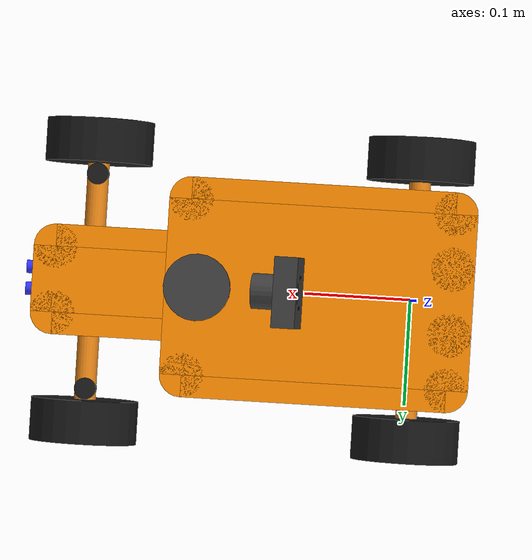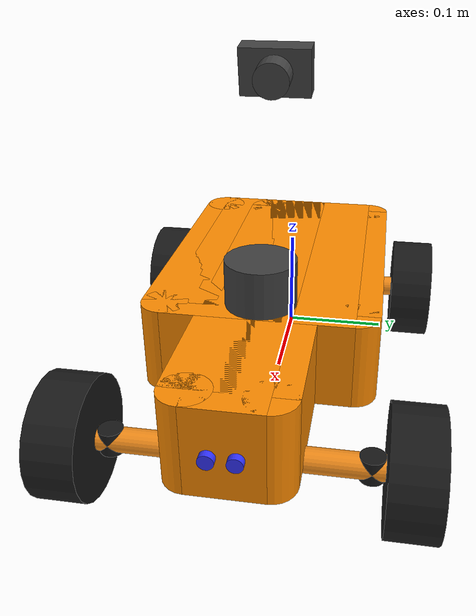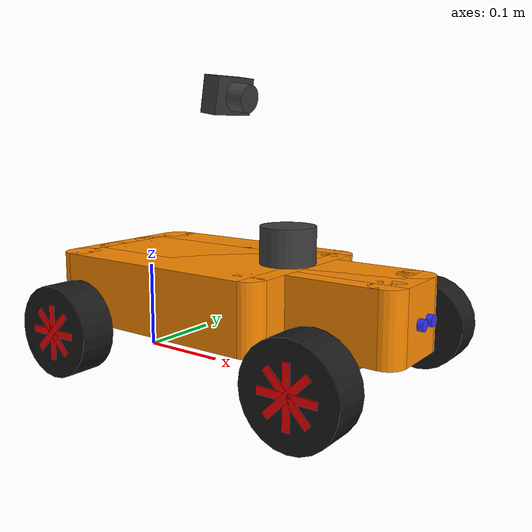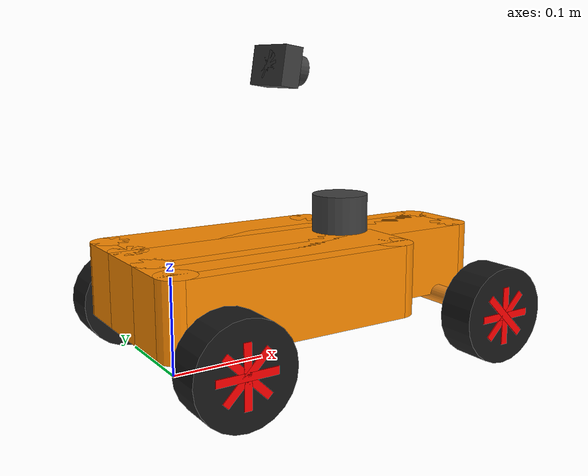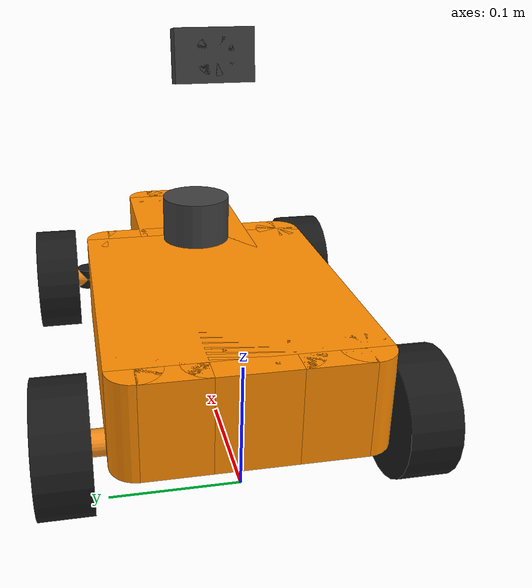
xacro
<?xml version="1.0"?>
<robot name="robo_car" xmlns:xacro="http://www.ros.org/wiki/xacro">

    <xacro:include filename="color_macros.xacro" />

    <xacro:include filename="inertia_macros.xacro" />

    <xacro:include filename="robot_core.xacro" />

    <xacro:include filename="controllers/gazebo_hw_ros2_control.xacro" />

</robot>

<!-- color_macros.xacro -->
<robot xmlns:xacro="http://www.ros.org/wiki/xacro" >

    <material name="white">
        <color rgba="1 1 1 1" />
    </material>

    <material name="grey">
        <color rgba="0.25 0.25 0.25 1"/>
    </material>

    <material name="orange">
        <color rgba="1 0.55 0 1"/>
    </material>

    <material name="blue">
        <color rgba="0.2 0.2 1 1"/>
    </material>

    <material name="red">
        <color rgba="1 0 0 1"/>
    </material>

    <material name="black">
        <color rgba="0.1 0.1 0.1 1"/>
    </material>

    <material name="silver">
        <color rgba="0.6 0.6 0.6 1"/>
    </material>

</robot>

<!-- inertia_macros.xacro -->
<robot name="robo_car" xmlns:xacro="http://www.ros.org/wiki/xacro" >

    <!-- Specify some standard inertial calculations https://en.wikipedia.org/wiki/List_of_moments_of_inertia -->
    <!-- These make use of xacro's mathematical functionality -->

    <!-- ################### inertia macros  ############################-->

    <xacro:macro name="inertial_sphere" params="mass radius *origin">
        <inertial>
            <xacro:insert_block name="origin"/>
            <mass value="${mass}" />
            <inertia ixx="${(2/5) * mass * (radius*radius)}" ixy="0.0" ixz="0.0"
                    iyy="${(2/5) * mass * (radius*radius)}" iyz="0.0"
                    izz="${(2/5) * mass * (radius*radius)}" />
        </inertial>
    </xacro:macro>

    <xacro:macro name="inertial_box" params="mass x y z *origin">
        <inertial>
            <xacro:insert_block name="origin"/>
            <mass value="${mass}" />
            <inertia ixx="${(1/12) * mass * (y*y+z*z)}" ixy="0.0" ixz="0.0"
                    iyy="${(1/12) * mass * (x*x+z*z)}" iyz="0.0"
                    izz="${(1/12) * mass * (x*x+y*y)}" />
        </inertial>
    </xacro:macro>

    <xacro:macro name="inertial_cylinder" params="mass length radius *origin">
        <inertial>
            <xacro:insert_block name="origin"/>
            <mass value="${mass}" />
            <inertia ixx="${(1/12) * mass * (3*radius*radius + length*length)}" ixy="0.0" ixz="0.0"
                    iyy="${(1/12) * mass * (3*radius*radius + length*length)}" iyz="0.0"
                    izz="${(1/2) * mass * (radius*radius)}" />
        </inertial>
    </xacro:macro>

</robot>

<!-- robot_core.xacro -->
<robot xmlns:xacro="http://www.ros.org/wiki/xacro">

    <xacro:include filename="other_parts/box_with_fillet_macro.xacro"/>
    <xacro:include filename="other_parts/drive_wheel_macro.xacro"/>
    <xacro:include filename="other_parts/drive_wheel_rim_macro.xacro"/>

    <xacro:include filename="sensors/sonar.xacro"/>
    <xacro:include filename="sensors/lidar.xacro"/>
    <xacro:include filename="sensors/cam.xacro"/>

    <xacro:property name="wheel_radius" value="0.05"/>
    <xacro:property name="wheel_width" value="0.04"/>
    <xacro:property name="wheel_mass" value="0.04"/>
    <xacro:property name="spoke_width" value="0.0075"/>

    <xacro:property name="chassis_height" value="0.075"/>
    <xacro:property name="wheel_seperation" value="0.26"/>
    <xacro:property name="dist_btw_front_rear" value="0.3"/>

    <!-- BASE LINK -->

    <link name="base_link">
    </link>

    <!-- CHASSIS LINK -->

    <joint name="chassis_joint" type="fixed">
        <parent link="base_link"/>
        <child link="chassis"/>
        <origin xyz="0 0 0.05"/>
    </joint>

    <link name="chassis">
        <xacro:insert_box_with_fillet size_x="0.28" size_y="0.2" size_z="${chassis_height}"
        fillet_radius="0.02" material="orange" x="0.09" y="0" z="${chassis_height/2}"/>
        <collision>
           <origin xyz="0.09 0 ${chassis_height/2}" rpy="0 0 0"/>
            <geometry>
                <box size="0.28 0.2 ${chassis_height}"/>
            </geometry>
        </collision>

        <xacro:insert_box_with_fillet size_x="0.4" size_y="0.1" size_z="${chassis_height}"
        fillet_radius="0.02" material="orange" x="0.15" y="0" z="${chassis_height/2}"/>
        <collision>
           <origin xyz="0.15 0 ${chassis_height/2}" rpy="0 0 0"/>
            <geometry>
                <box size="0.4 0.1 ${chassis_height}"/>
            </geometry>
        </collision>

        <visual>
            <origin xyz="0 0 0" rpy="${-pi/2} 0 0"/>
            <geometry>
                <cylinder length="${wheel_seperation-0.04}" radius="0.01"/>
            </geometry>
        </visual>
        <collision>
           <origin xyz="0 0 0" rpy="${-pi/2} 0 0"/>
            <geometry>
                <cylinder length="${wheel_seperation-0.04}" radius="0.01"/>
            </geometry>
        </collision>

        <visual>
            <origin xyz="${dist_btw_front_rear} 0 0" rpy="${-pi/2} 0 0"/>
            <geometry>
                <cylinder length="${wheel_seperation-0.04}" radius="0.01"/>
            </geometry>
        </visual>
        <collision>
           <origin xyz="${dist_btw_front_rear} 0 0" rpy="${-pi/2} 0 0"/>
            <geometry>
                <cylinder length="${wheel_seperation-0.04}" radius="0.01"/>
            </geometry>
        </collision>

        <xacro:inertial_box mass="4.0" x="0.4" y="0.2" z="${chassis_height}">
            <origin xyz="0.15 0 ${chassis_height/2}" rpy="0 0 0"/>
        </xacro:inertial_box>
    </link>
    <gazebo reference="chassis">
        <material>Gazebo/Orange</material>
    </gazebo>

    <!--  FRONT LEFT SERVO STEER LINK -->

    <joint name="front_left_servo_joint" type="revolute">
        <parent link="chassis"/>
        <child link="front_left_servo"/>
        <origin xyz="${dist_btw_front_rear} 0.1 0"/>
        <axis xyz="0 0 1"/>
        <limit effort="1000.0" lower="${-pi/2}" upper="${pi/2}" velocity="0.5"/>
    </joint>

    <link name="front_left_servo">
        <visual>
            <origin xyz="0 0 0" rpy="0 0 0"/>
            <geometry>
                <cylinder radius="0.01" length="0.02"/>
            </geometry>
            <material name="black"/>
        </visual>
        <collision>
           <origin xyz="0 0 0" rpy="0 0 0"/>
            <geometry>
                <cylinder radius="0.01" length="0.02"/>
            </geometry>
        </collision>
        <xacro:inertial_cylinder mass="0.005" length="0.02" radius="0.01">
            <origin xyz="0 0 0" rpy="0 0 0"/>
        </xacro:inertial_cylinder>
    </link>
    <gazebo reference="front_left_servo">
        <material>Gazebo/DarkGrey</material>
    </gazebo>

    <!-- FRONT LEFT DRIVE WHEEL -->

    <xacro:insert_drive_wheel
        base_name="front_left_wheel"
        parent_name="front_left_servo"
        x="0" y="0.03" z="0"
        mass="${wheel_mass}"
        radius="${wheel_radius}"
        thickness="${wheel_width}"/>

    <xacro:insert_drive_wheel_rim
        base_name="front_left_rim"
        parent_name="front_left_wheel"
        x="0" y="0" z="0.001"
        radius="${wheel_radius}"
        thickness="${wheel_width}"
        spoke_width="${spoke_width}"/>

    <!--  FRONT RIGHT SERVO STEER LINK -->

    <joint name="front_right_servo_joint" type="revolute">
        <parent link="chassis"/>
        <child link="front_right_servo"/>
        <origin xyz="${dist_btw_front_rear} -0.1 0"/>
        <axis xyz="0 0 1"/>
        <limit effort="1000.0" lower="${-pi/2}" upper="${pi/2}" velocity="0.5"/>
    </joint>

    <link name="front_right_servo">
        <visual>
            <origin xyz="0 0 0" rpy="0 0 0"/>
            <geometry>
                <cylinder radius="0.01" length="0.02"/>
            </geometry>
            <material name="black"/>
        </visual>
        <collision>
           <origin xyz="0 0 0" rpy="0 0 0"/>
            <geometry>
                <cylinder radius="0.01" length="0.02"/>
            </geometry>
        </collision>
        <xacro:inertial_cylinder mass="0.005" length="0.02" radius="0.01">
            <origin xyz="0 0 0" rpy="0 0 0"/>
        </xacro:inertial_cylinder>
    </link>
    <gazebo reference="front_right_servo">
        <material>Gazebo/DarkGrey</material>
    </gazebo>

    <!-- FRONT RIGHT DRIVE WHEEL -->

    <xacro:insert_drive_wheel
        base_name="front_right_wheel"
        parent_name="front_right_servo"
        x="0" y="-0.03" z="0"
        mass="${wheel_mass}"
        radius="${wheel_radius}"
        thickness="${wheel_width}"/>

    <xacro:insert_drive_wheel_rim
        base_name="front_right_rim"
        parent_name="front_right_wheel"
        x="0" y="0" z="-0.001"
        radius="${wheel_radius}"
        thickness="${wheel_width}"
        spoke_width="${spoke_width}"/>

    <!-- REAR LEFT DRIVE WHEEL -->

    <xacro:insert_drive_wheel
        base_name="rear_left_wheel"
        parent_name="chassis"
        x="0" y="${wheel_seperation/2}" z="0"
        mass="${wheel_mass}"
        radius="${wheel_radius}"
        thickness="${wheel_width}"/>

    <xacro:insert_drive_wheel_rim
        base_name="rear_left_rim"
        parent_name="rear_left_wheel"
        x="0" y="0" z="0.001"
        radius="${wheel_radius}"
        thickness="${wheel_width}"
        spoke_width="${spoke_width}"/>

    <!-- REAR RIGHT DRIVE WHEEL -->

    <xacro:insert_drive_wheel
        base_name="rear_right_wheel"
        parent_name="chassis"
        x="0" y="${-wheel_seperation/2}" z="0"
        mass="${wheel_mass}"
        radius="${wheel_radius}"
        thickness="${wheel_width}"/>

    <xacro:insert_drive_wheel_rim
        base_name="rear_right_rim"
        parent_name="rear_right_wheel"
        x="0" y="0" z="-0.001"
        radius="${wheel_radius}"
        thickness="${wheel_width}"
        spoke_width="${spoke_width}"/>

    <!--  sonar -->
    <xacro:insert_sonar
        base_name="sonar"
        parent_name="chassis"
        x="${0.15+0.2+0.005}" y="0" z="${(chassis_height/2)}"
        mass="0.005"
        min_range="0.02" max_range="3.0"
        resolution="0.01" visualize="false"/>

     <!--  lidar -->
    <xacro:property name="lidar_z_offset" value="0.04"/>
    <xacro:insert_lidar
        base_name="lidar"
        parent_name="chassis"
        x="0.2" y="0" z="${chassis_height+lidar_z_offset}"
        mass="0.1" samples="360"
        min_angle="${-pi*2}" max_angle="${pi*2}"
        min_range="0.1" max_range="10"
        visualize="false"/>

    <!--  imu -->

    <!--  normal camera style -->
    <xacro:property name="cam_x_offset" value="0.04"/>
    <xacro:property name="cam_z_offset" value="0.02"/>
    <xacro:insert_camera
        base_name="cam"
        parent_name="chassis"
        x="0.15" y="0" z="${chassis_height+cam_z_offset+0.15}"
        mass="0.005"
        width="640" height="480"
        min_range="0.02" max_range="5.0"
        tilt_angle="${pi/20}"
        visualize="true"/>

</robot>

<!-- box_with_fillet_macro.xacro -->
<robot xmlns:xacro="http://www.ros.org/wiki/xacro" >

    <xacro:macro name="insert_box_with_fillet" params="x y z size_x size_y size_z fillet_radius material">
            <!-- logitudinal box -->
            <visual>
                <origin xyz="${x} ${y} ${z}" rpy="0 0 0"/>
                <geometry>
                    <box size="${size_x} ${size_y-(2*fillet_radius)} ${size_z}"/>
                </geometry>
                <material name="${material}"/>
            </visual>
            <!-- lateral box -->
            <visual>
                <origin xyz="${x} ${y} ${z}" rpy="0 0 0"/>
                <geometry>
                    <box size="${size_x-(2*fillet_radius)} ${size_y} ${size_z}"/>
                </geometry>
                <material name="${material}"/>
            </visual>
            <!-- cylinder1 -->
            <visual>
                <origin xyz="${x+((size_x/2)-fillet_radius)} ${y+((size_y/2)-fillet_radius)} ${z}" rpy="0 0 0"/>
                <geometry>
                    <cylinder length="${size_z}" radius="${fillet_radius}"/>
                </geometry>
                <material name="${material}"/>
            </visual>
            <!-- cylinder2 -->
            <visual>
                <origin xyz="${x+((size_x/2)-fillet_radius)} ${y-((size_y/2)-fillet_radius)} ${z}" rpy="0 0 0"/>
                <geometry>
                    <cylinder length="${size_z}" radius="${fillet_radius}"/>
                </geometry>
                <material name="${material}"/>
            </visual>
            <!-- cylinder3 -->
            <visual>
                <origin xyz="${x-((size_x/2)-fillet_radius)} ${y+((size_y/2)-fillet_radius)} ${z}" rpy="0 0 0"/>
                <geometry>
                    <cylinder length="${size_z}" radius="${fillet_radius}"/>
                </geometry>
                <material name="${material}"/>
            </visual>
            <!-- cylinder4 -->
            <visual>
                <origin xyz="${x-((size_x/2)-fillet_radius)} ${y-((size_y/2)-fillet_radius)} ${z}" rpy="0 0 0"/>
                <geometry>
                    <cylinder length="${size_z}" radius="${fillet_radius}"/>
                </geometry>
                <material name="${material}"/>
            </visual>
    </xacro:macro>

</robot>

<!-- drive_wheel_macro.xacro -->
<robot xmlns:xacro="http://www.ros.org/wiki/xacro" >

    <xacro:macro name="material_black">
        <material name="black">
            <color rgba="0.1 0.1 0.1 1"/>
        </material>
    </xacro:macro>

    <xacro:macro name="inertial_cylinder" params="mass length radius *origin">
        <inertial>
            <xacro:insert_block name="origin"/>
            <mass value="${mass}" />
            <inertia ixx="${(1/12) * mass * (3*radius*radius + length*length)}" ixy="0.0" ixz="0.0"
                    iyy="${(1/12) * mass * (3*radius*radius + length*length)}" iyz="0.0"
                    izz="${(1/2) * mass * (radius*radius)}" />
        </inertial>
    </xacro:macro>

     <!-- GAZEBO WHEEL PARAMETERS -->
    <xacro:macro name="gazebo_wheel_settings" params="name">
        <gazebo reference="${name}">
            <mu1>1.0</mu1>
            <mu2>1.0</mu2>
            <kp>1000000</kp>
            <kd>0.01</kd>
            <minDepth>0.001</minDepth>
            <material>Gazebo/FlatBlack</material>
        </gazebo>
    </xacro:macro>

    <xacro:macro name="insert_drive_wheel" params="base_name parent_name x y z mass radius thickness">
        <joint name="${base_name}_joint" type="continuous">
            <parent link="${parent_name}"/>
            <child link="${base_name}"/>
            <origin xyz="${x} ${y} ${z}" rpy="${-pi/2} 0 0"/>
            <axis xyz="0 0 1"/>
        </joint>

        <link name="${base_name}">
            <visual>
                <origin xyz="0 0 0" rpy="0 0 0"/>
                <geometry>
                    <cylinder radius="${radius}" length="${thickness}"/>
                </geometry>
                <xacro:material_black/>
            </visual>
            <collision>
            <origin xyz="0 0 0" rpy="0 0 0"/>
                <geometry>
                    <cylinder radius="${radius}" length="${thickness}"/>
                </geometry>
            </collision>
            <xacro:inertial_cylinder mass="${mass}" length="${thickness}" radius="${radius}">
                <origin xyz="0 0 0" rpy="0 0 0"/>
            </xacro:inertial_cylinder>
        </link>

        <xacro:gazebo_wheel_settings name="${base_name}"/>

    </xacro:macro>

</robot>

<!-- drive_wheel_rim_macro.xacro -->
<robot xmlns:xacro="http://www.ros.org/wiki/xacro" >

    <xacro:macro name="material_red">
        <material name="red">
            <color rgba="1 0 0 1"/>
        </material>
    </xacro:macro>

    <xacro:macro name="insert_drive_wheel_rim" params="base_name parent_name x y z radius thickness spoke_width">

        <joint name="${base_name}_joint" type="fixed">
            <parent link="${parent_name}"/>
            <child link="${base_name}"/>
            <origin xyz="${x} ${y} ${z}" rpy="0 0 0"/>
        </joint>

        <link name="${base_name}">
            <visual>
                <origin xyz="0 0 0" rpy="0 0 0"/>
                <geometry>
                    <box size="${spoke_width} ${radius*1.2} ${thickness}"/>
                </geometry>
                <xacro:material_red/>
            </visual>
            <visual>
                <origin xyz="0 0 0" rpy="0 0 ${pi/2}"/>
                <geometry>
                    <box size="${spoke_width} ${radius*1.2} ${thickness}"/>
                </geometry>
                <xacro:material_red/>
            </visual>
            <visual>
                <origin xyz="0 0 0" rpy="0 0 ${-pi/4}"/>
                <geometry>
                    <box size="${spoke_width} ${radius*1.2} ${thickness}"/>
                </geometry>
                <xacro:material_red/>
            </visual>
            <visual>
                <origin xyz="0 0 0" rpy="0 0 ${pi/4}"/>
                <geometry>
                    <box size="${spoke_width} ${radius*1.2} ${thickness}"/>
                </geometry>
                <xacro:material_red/>
            </visual>

        </link>

        <gazebo reference="${base_name}">
            <material>Gazebo/Red</material>
        </gazebo>

    </xacro:macro>

</robot>

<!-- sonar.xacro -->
<robot xmlns:xacro="http://www.ros.org/wiki/xacro">

    <xacro:macro name="insert_sonar" params="base_name parent_name x y z mass min_range max_range resolution visualize">

        <joint name="${base_name}_joint" type="fixed">
            <parent link="${parent_name}"/>
            <child link="${base_name}"/>
            <origin xyz="${x} ${y} ${z}" rpy="0 0 0"/>
        </joint>

        <link name="${base_name}">
            <visual>
                <origin xyz="0 0.01 0" rpy="0 ${pi/2} 0"/>
                <geometry>
                    <cylinder radius="0.006" length="0.006"/>
                </geometry>
                <material name="blue"/>
            </visual>
            <collision>
                <origin xyz="0 0.01 0" rpy="0 ${pi/2} 0"/>
                <geometry>
                    <cylinder radius="0.006" length="0.006"/>
                </geometry>
            </collision>

            <visual>
                <origin xyz="0 -0.01 0" rpy="0 ${pi/2} 0"/>
                <geometry>
                    <cylinder radius="0.006" length="0.006"/>
                </geometry>
                <material name="blue"/>
            </visual>
            <collision>
                <origin xyz="0 -0.01 0" rpy="0 ${pi/2} 0"/>
                <geometry>
                    <cylinder radius="0.006" length="0.006"/>
                </geometry>
            </collision>

            <xacro:inertial_cylinder mass="${mass}" length="0.006" radius="0.006">
                <origin xyz="0 0.01 0" rpy="0 ${pi/2} 0"/>
            </xacro:inertial_cylinder>
        </link>

        <gazebo reference="${base_name}">
            <material>Gazebo/Blue</material>

            <sensor name="${base_name}" type="ray">
                <always_on>true</always_on>
                <visualize>${visualize}</visualize>
                <pose>0.0 0 0.0 0 0 0</pose>
                <update_rate>5</update_rate>
                <ray>
                    <scan>
                        <horizontal>
                            <samples>20</samples>
                            <resolution>1</resolution>
                            <min_angle>${-pi/90}</min_angle>
                            <max_angle>${pi/90}</max_angle>
                        </horizontal>
                        <vertical>
                            <samples>20</samples>
                            <resolution>1</resolution>
                            <min_angle>${-pi/150}</min_angle>
                            <max_angle>${pi/150}</max_angle>
                        </vertical>
                    </scan>
                    <range>
                        <min>${min_range}</min>
                        <max>${max_range}</max>
                        <resolution>${resolution}</resolution>
                    </range>
                </ray>

                <plugin name="${base_name}_plugin" filename="libgazebo_ros_ray_sensor.so">
                    <ros>
                        <namespace>${base_name}</namespace>
                        <remapping>~/out:=range</remapping>
                    </ros>
                    <output_type>sensor_msgs/Range</output_type>
                    <radiation_type>ultrasound</radiation_type>
                    <frame_name>${base_name}</frame_name>
                </plugin>
            </sensor>
        </gazebo>
    </xacro:macro>

</robot>

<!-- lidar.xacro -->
<robot xmlns:xacro="http://www.ros.org/wiki/xacro" >

    <xacro:macro name="insert_lidar" params="base_name parent_name x y z mass samples min_angle max_angle min_range max_range visualize">
        <joint name="${base_name}_joint" type="fixed">
            <parent link="${parent_name}"/>
            <child link="${base_name}"/>
            <origin xyz="${x} ${y} ${z}" rpy="0 0 0"/>
        </joint>

        <link name="${base_name}">
            <visual>
                <origin xyz="0 0 -0.02"/>
                <geometry>
                    <cylinder radius="0.03" length="0.04"/>
                </geometry>
                <material name="grey"/>
            </visual>
            <collision>
                <origin xyz="0 0 -0.02"/>
                <geometry>
                    <cylinder radius="0.03" length="0.04"/>
                </geometry>
            </collision>
            <xacro:inertial_cylinder mass="${mass}" length="0.04" radius="0.03">
                <origin xyz="0 0 -0.02" rpy="0 0 0"/>
            </xacro:inertial_cylinder>
        </link>

        <gazebo reference="${base_name}">
            <material>Gazebo/DarkGrey</material>

            <sensor name="${base_name}" type="ray">
                <pose> 0 0 0 0 0 0 </pose>
                <visualize>${visualize}</visualize>
                <update_rate>10</update_rate>
                <ray>
                    <scan>
                        <horizontal>
                            <samples>${samples}</samples>
                            <min_angle>${min_angle}</min_angle>
                            <max_angle>${max_angle}</max_angle>
                        </horizontal>
                    </scan>
                    <range>
                        <min>${min_range}</min>
                        <max>${max_range}</max>
                    </range>
                </ray>
                <plugin name="${base_name}_plugin" filename="libgazebo_ros_ray_sensor.so">
                    <ros>
                        <namespace>${base_name}</namespace>
                        <remapping>~/out:=scan</remapping>
                    </ros>
                    <output_type>sensor_msgs/LaserScan</output_type>
                    <frame_name>${base_name}</frame_name>
                </plugin>
            </sensor>
        </gazebo>
    </xacro:macro>

</robot>

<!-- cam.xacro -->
<robot xmlns:xacro="http://www.ros.org/wiki/xacro" >

    <xacro:macro name="insert_camera" params="base_name parent_name x y z mass width height min_range max_range tilt_angle visualize">
        <joint name="${base_name}_joint" type="fixed">
            <parent link="${parent_name}"/>
            <child link="${base_name}"/>
            <origin xyz="${x} ${y} ${z}" rpy="0 ${tilt_angle} 0"/>
        </joint>

        <link name="${base_name}">
            <visual>
                <origin xyz="-0.02 0 0" rpy="0 ${-pi/2} 0"/>
                <geometry>
                    <cylinder radius="0.015" length="0.04"/>
                </geometry>
                <material name="grey"/>
            </visual>
            <visual>
                <origin xyz="-0.03 0 0" rpy="0 ${-pi/2} 0"/>
                <geometry>
                    <box size="0.04 0.06 0.02"/>
                </geometry>
                <material name="grey"/>
            </visual>

            <collision>
                <origin xyz="-0.02 0 0" rpy="0 ${-pi/2} 0"/>
                <geometry>
                    <cylinder radius="0.02" length="0.04"/>
                </geometry>
            </collision>
            <xacro:inertial_cylinder mass="${mass}" radius="0.02" length="0.04">
                <origin xyz="-0.02 0 0" rpy="0 ${-pi/2} 0"/>
            </xacro:inertial_cylinder>
        </link>

        <joint name="${base_name}_optical_joint" type="fixed">
            <parent link="${base_name}"/>
            <child link="${base_name}_optical_link"/>
            <origin xyz="0 0 0" rpy="${-pi/2} 0 ${-pi/2}"/>
        </joint>

        <link name="${base_name}_optical_link"/>

        <gazebo reference="${base_name}">
          <material>Gazebo/DarkGrey</material>

          <sensor name="${base_name}" type="camera">
            <pose> 0 0 0 0 0 0 </pose>
            <visualize>${visualize}</visualize>
            <update_rate>20</update_rate>
            <camera>
                <horizontal_fov>1.46608</horizontal_fov>
                <image>
                    <format>R8G8B8</format>
                    <width>${width}</width>
                    <height>${height}</height>
                </image>
                <clip>
                    <near>${min_range}</near>
                    <far>${max_range}</far>
                </clip>
            </camera>
            <plugin name="${base_name}_plugin" filename="libgazebo_ros_camera.so">
                <frame_name>${base_name}_optical_link</frame_name>
            </plugin>
          </sensor>
        </gazebo>

    </xacro:macro>

</robot>
